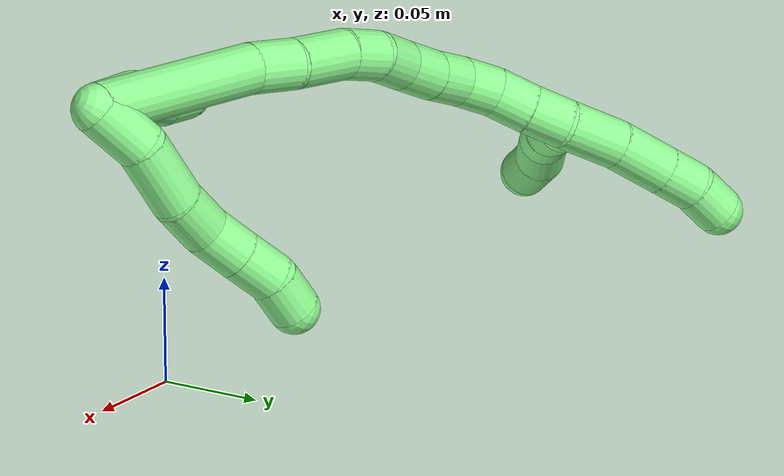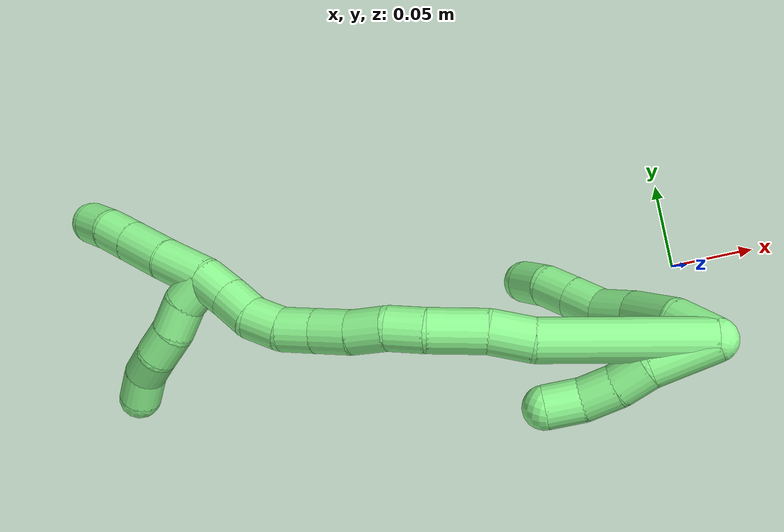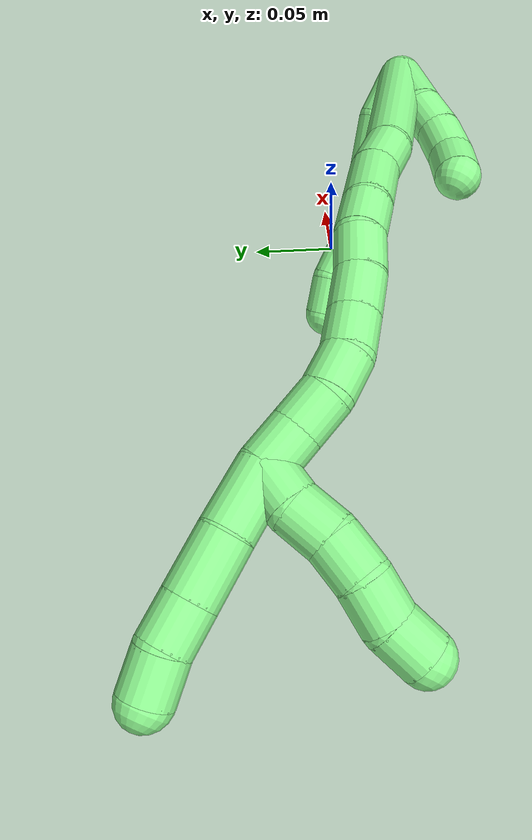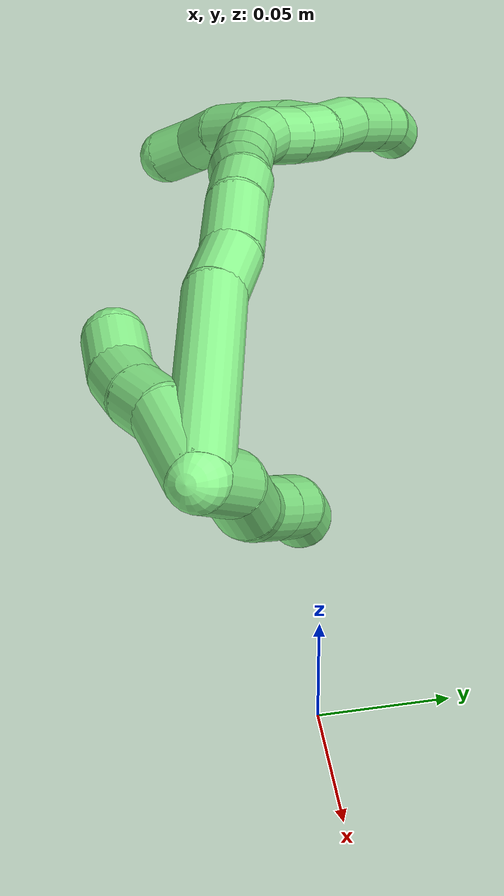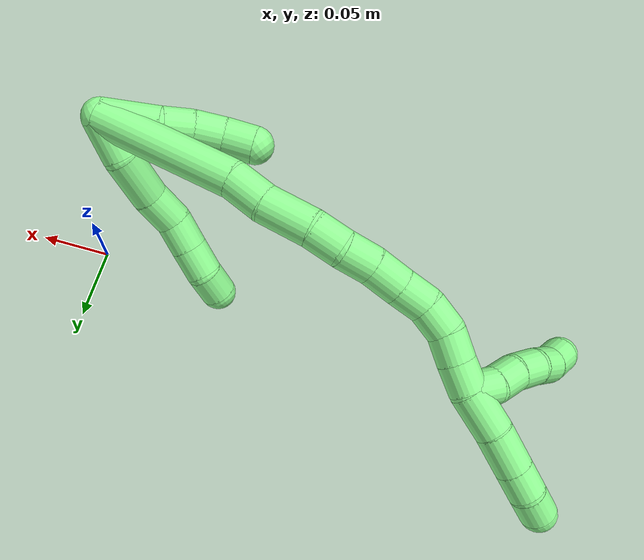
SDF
<sdf version="1.7">
 <world name="default">
  <model name="13">
   <static>0</static>
   <link name="13">
    <collision name="collision-cylinder-e_1_2_8">
     <pose>0.001333 0.003255 0.013668 -0.233775 0.094561 -0.011112</pose>
     <geometry><cylinder><radius>0.0125</radius><length>0.028226</length></cylinder></geometry>
     <surface>
      <friction><ode><mu>1.16</mu><mu2>1.16</mu2><slip1>0</slip1><slip2>0</slip2></ode></friction>
      <contact><ode><kp>1e+06</kp><kd>1</kd><max_vel>0</max_vel><min_depth>0.001</min_depth></ode></contact>
     </surface>
    </collision>
    <visual name="visual-cylinder-e_1_2_8">
     <pose>0.001333 0.003255 0.013668 -0.233775 0.094561 -0.011112</pose>
     <geometry><cylinder><radius>0.0125</radius><length>0.028226</length></cylinder></geometry>
     <material><ambient>0.564706 0.984314 0.572549 1</ambient></material>
    </visual>
    <collision name="collision-cylinder-e_2_8_9">
     <pose>0.000651 0.014031 0.042525 -0.459805 -0.118259 0.027708</pose>
     <geometry><cylinder><radius>0.0125</radius><length>0.034137</length></cylinder></geometry>
     <surface>
      <friction><ode><mu>1.16</mu><mu2>1.16</mu2><slip1>0</slip1><slip2>0</slip2></ode></friction>
      <contact><ode><kp>1e+06</kp><kd>1</kd><max_vel>0</max_vel><min_depth>0.001</min_depth></ode></contact>
     </surface>
    </collision>
    <visual name="visual-cylinder-e_2_8_9">
     <pose>0.000651 0.014031 0.042525 -0.459805 -0.118259 0.027708</pose>
     <geometry><cylinder><radius>0.0125</radius><length>0.034137</length></cylinder></geometry>
     <material><ambient>0.564706 0.984314 0.572549 1</ambient></material>
    </visual>
    <collision name="collision-cylinder-e_3_9_10">
     <pose>-0.004018 0.024795 0.069133 -0.276635 -0.220128 0.030765</pose>
     <geometry><cylinder><radius>0.0125</radius><length>0.024327</length></cylinder></geometry>
     <surface>
      <friction><ode><mu>1.16</mu><mu2>1.16</mu2><slip1>0</slip1><slip2>0</slip2></ode></friction>
      <contact><ode><kp>1e+06</kp><kd>1</kd><max_vel>0</max_vel><min_depth>0.001</min_depth></ode></contact>
     </surface>
    </collision>
    <visual name="visual-cylinder-e_3_9_10">
     <pose>-0.004018 0.024795 0.069133 -0.276635 -0.220128 0.030765</pose>
     <geometry><cylinder><radius>0.0125</radius><length>0.024327</length></cylinder></geometry>
     <material><ambient>0.564706 0.984314 0.572549 1</ambient></material>
    </visual>
    <collision name="collision-cylinder-e_4_10_11">
     <pose>-0.005964 0.029835 0.091082 -0.169147 0.066433 -0.005634</pose>
     <geometry><cylinder><radius>0.0125</radius><length>0.021415</length></cylinder></geometry>
     <surface>
      <friction><ode><mu>1.16</mu><mu2>1.16</mu2><slip1>0</slip1><slip2>0</slip2></ode></friction>
      <contact><ode><kp>1e+06</kp><kd>1</kd><max_vel>0</max_vel><min_depth>0.001</min_depth></ode></contact>
     </surface>
    </collision>
    <visual name="visual-cylinder-e_4_10_11">
     <pose>-0.005964 0.029835 0.091082 -0.169147 0.066433 -0.005634</pose>
     <geometry><cylinder><radius>0.0125</radius><length>0.021415</length></cylinder></geometry>
     <material><ambient>0.564706 0.984314 0.572549 1</ambient></material>
    </visual>
    <collision name="collision-cylinder-e_5_11_12">
     <pose>-0.00464 0.033264 0.112134 -0.153725 0.057452 -0.004426</pose>
     <geometry><cylinder><radius>0.0125</radius><length>0.021328</length></cylinder></geometry>
     <surface>
      <friction><ode><mu>1.16</mu><mu2>1.16</mu2><slip1>0</slip1><slip2>0</slip2></ode></friction>
      <contact><ode><kp>1e+06</kp><kd>1</kd><max_vel>0</max_vel><min_depth>0.001</min_depth></ode></contact>
     </surface>
    </collision>
    <visual name="visual-cylinder-e_5_11_12">
     <pose>-0.00464 0.033264 0.112134 -0.153725 0.057452 -0.004426</pose>
     <geometry><cylinder><radius>0.0125</radius><length>0.021328</length></cylinder></geometry>
     <material><ambient>0.564706 0.984314 0.572549 1</ambient></material>
    </visual>
    <collision name="collision-cylinder-e_6_12_6">
     <pose>-0.005211 0.039051 0.131986 -0.419095 -0.11528 0.024542</pose>
     <geometry><cylinder><radius>0.0125</radius><length>0.020567</length></cylinder></geometry>
     <surface>
      <friction><ode><mu>1.16</mu><mu2>1.16</mu2><slip1>0</slip1><slip2>0</slip2></ode></friction>
      <contact><ode><kp>1e+06</kp><kd>1</kd><max_vel>0</max_vel><min_depth>0.001</min_depth></ode></contact>
     </surface>
    </collision>
    <visual name="visual-cylinder-e_6_12_6">
     <pose>-0.005211 0.039051 0.131986 -0.419095 -0.11528 0.024542</pose>
     <geometry><cylinder><radius>0.0125</radius><length>0.020567</length></cylinder></geometry>
     <material><ambient>0.564706 0.984314 0.572549 1</ambient></material>
    </visual>
    <collision name="collision-cylinder-e_1_2_13">
     <pose>-0.01225 -0.006717 0.012942 0.478711 -0.69872 -0.177339</pose>
     <geometry><cylinder><radius>0.0125</radius><length>0.038088</length></cylinder></geometry>
     <surface>
      <friction><ode><mu>1.16</mu><mu2>1.16</mu2><slip1>0</slip1><slip2>0</slip2></ode></friction>
      <contact><ode><kp>1e+06</kp><kd>1</kd><max_vel>0</max_vel><min_depth>0.001</min_depth></ode></contact>
     </surface>
    </collision>
    <visual name="visual-cylinder-e_1_2_13">
     <pose>-0.01225 -0.006717 0.012942 0.478711 -0.69872 -0.177339</pose>
     <geometry><cylinder><radius>0.0125</radius><length>0.038088</length></cylinder></geometry>
     <material><ambient>0.564706 0.984314 0.572549 1</ambient></material>
    </visual>
    <collision name="collision-cylinder-e_2_13_14">
     <pose>-0.032229 -0.0144 0.032251 0.15068 -0.876121 -0.070685</pose>
     <geometry><cylinder><radius>0.0125</radius><length>0.020121</length></cylinder></geometry>
     <surface>
      <friction><ode><mu>1.16</mu><mu2>1.16</mu2><slip1>0</slip1><slip2>0</slip2></ode></friction>
      <contact><ode><kp>1e+06</kp><kd>1</kd><max_vel>0</max_vel><min_depth>0.001</min_depth></ode></contact>
     </surface>
    </collision>
    <visual name="visual-cylinder-e_2_13_14">
     <pose>-0.032229 -0.0144 0.032251 0.15068 -0.876121 -0.070685</pose>
     <geometry><cylinder><radius>0.0125</radius><length>0.020121</length></cylinder></geometry>
     <material><ambient>0.564706 0.984314 0.572549 1</ambient></material>
    </visual>
    <collision name="collision-cylinder-e_3_14_15">
     <pose>-0.046718 -0.017061 0.046239 0.218821 -0.713706 -0.081861</pose>
     <geometry><cylinder><radius>0.0125</radius><length>0.020655</length></cylinder></geometry>
     <surface>
      <friction><ode><mu>1.16</mu><mu2>1.16</mu2><slip1>0</slip1><slip2>0</slip2></ode></friction>
      <contact><ode><kp>1e+06</kp><kd>1</kd><max_vel>0</max_vel><min_depth>0.001</min_depth></ode></contact>
     </surface>
    </collision>
    <visual name="visual-cylinder-e_3_14_15">
     <pose>-0.046718 -0.017061 0.046239 0.218821 -0.713706 -0.081861</pose>
     <geometry><cylinder><radius>0.0125</radius><length>0.020655</length></cylinder></geometry>
     <material><ambient>0.564706 0.984314 0.572549 1</ambient></material>
    </visual>
    <collision name="collision-cylinder-e_4_15_5">
     <pose>-0.058667 -0.023267 0.061886 0.512035 -0.513169 -0.13714</pose>
     <geometry><cylinder><radius>0.0125</radius><length>0.021136</length></cylinder></geometry>
     <surface>
      <friction><ode><mu>1.16</mu><mu2>1.16</mu2><slip1>0</slip1><slip2>0</slip2></ode></friction>
      <contact><ode><kp>1e+06</kp><kd>1</kd><max_vel>0</max_vel><min_depth>0.001</min_depth></ode></contact>
     </surface>
    </collision>
    <visual name="visual-cylinder-e_4_15_5">
     <pose>-0.058667 -0.023267 0.061886 0.512035 -0.513169 -0.13714</pose>
     <geometry><cylinder><radius>0.0125</radius><length>0.021136</length></cylinder></geometry>
     <material><ambient>0.564706 0.984314 0.572549 1</ambient></material>
    </visual>
    <collision name="collision-cylinder-e_1_2_16">
     <pose>-0.014631 -0.024926 0.038599 0.573397 -0.308284 -0.091551</pose>
     <geometry><cylinder><radius>0.0125</radius><length>0.096442</length></cylinder></geometry>
     <surface>
      <friction><ode><mu>1.16</mu><mu2>1.16</mu2><slip1>0</slip1><slip2>0</slip2></ode></friction>
      <contact><ode><kp>1e+06</kp><kd>1</kd><max_vel>0</max_vel><min_depth>0.001</min_depth></ode></contact>
     </surface>
    </collision>
    <visual name="visual-cylinder-e_1_2_16">
     <pose>-0.014631 -0.024926 0.038599 0.573397 -0.308284 -0.091551</pose>
     <geometry><cylinder><radius>0.0125</radius><length>0.096442</length></cylinder></geometry>
     <material><ambient>0.564706 0.984314 0.572549 1</ambient></material>
    </visual>
    <collision name="collision-cylinder-e_2_16_17">
     <pose>-0.030751 -0.055646 0.088076 0.489422 -0.120153 -0.030038</pose>
     <geometry><cylinder><radius>0.0125</radius><length>0.024828</length></cylinder></geometry>
     <surface>
      <friction><ode><mu>1.16</mu><mu2>1.16</mu2><slip1>0</slip1><slip2>0</slip2></ode></friction>
      <contact><ode><kp>1e+06</kp><kd>1</kd><max_vel>0</max_vel><min_depth>0.001</min_depth></ode></contact>
     </surface>
    </collision>
    <visual name="visual-cylinder-e_2_16_17">
     <pose>-0.030751 -0.055646 0.088076 0.489422 -0.120153 -0.030038</pose>
     <geometry><cylinder><radius>0.0125</radius><length>0.024828</length></cylinder></geometry>
     <material><ambient>0.564706 0.984314 0.572549 1</ambient></material>
    </visual>
    <collision name="collision-cylinder-e_3_17_18">
     <pose>-0.037022 -0.069299 0.112614 0.522069 -0.294669 -0.079248</pose>
     <geometry><cylinder><radius>0.0125</radius><length>0.032939</length></cylinder></geometry>
     <surface>
      <friction><ode><mu>1.16</mu><mu2>1.16</mu2><slip1>0</slip1><slip2>0</slip2></ode></friction>
      <contact><ode><kp>1e+06</kp><kd>1</kd><max_vel>0</max_vel><min_depth>0.001</min_depth></ode></contact>
     </surface>
    </collision>
    <visual name="visual-cylinder-e_3_17_18">
     <pose>-0.037022 -0.069299 0.112614 0.522069 -0.294669 -0.079248</pose>
     <geometry><cylinder><radius>0.0125</radius><length>0.032939</length></cylinder></geometry>
     <material><ambient>0.564706 0.984314 0.572549 1</ambient></material>
    </visual>
    <collision name="collision-cylinder-e_4_18_19">
     <pose>-0.044595 -0.080606 0.136054 0.338941 -0.262837 -0.045227</pose>
     <geometry><cylinder><radius>0.0125</radius><length>0.021477</length></cylinder></geometry>
     <surface>
      <friction><ode><mu>1.16</mu><mu2>1.16</mu2><slip1>0</slip1><slip2>0</slip2></ode></friction>
      <contact><ode><kp>1e+06</kp><kd>1</kd><max_vel>0</max_vel><min_depth>0.001</min_depth></ode></contact>
     </surface>
    </collision>
    <visual name="visual-cylinder-e_4_18_19">
     <pose>-0.044595 -0.080606 0.136054 0.338941 -0.262837 -0.045227</pose>
     <geometry><cylinder><radius>0.0125</radius><length>0.021477</length></cylinder></geometry>
     <material><ambient>0.564706 0.984314 0.572549 1</ambient></material>
    </visual>
    <collision name="collision-cylinder-e_5_19_20">
     <pose>-0.051777 -0.085223 0.155485 0.120577 -0.424339 -0.026004</pose>
     <geometry><cylinder><radius>0.0125</radius><length>0.021335</length></cylinder></geometry>
     <surface>
      <friction><ode><mu>1.16</mu><mu2>1.16</mu2><slip1>0</slip1><slip2>0</slip2></ode></friction>
      <contact><ode><kp>1e+06</kp><kd>1</kd><max_vel>0</max_vel><min_depth>0.001</min_depth></ode></contact>
     </surface>
    </collision>
    <visual name="visual-cylinder-e_5_19_20">
     <pose>-0.051777 -0.085223 0.155485 0.120577 -0.424339 -0.026004</pose>
     <geometry><cylinder><radius>0.0125</radius><length>0.021335</length></cylinder></geometry>
     <material><ambient>0.564706 0.984314 0.572549 1</ambient></material>
    </visual>
    <collision name="collision-cylinder-e_6_20_21">
     <pose>-0.059238 -0.087753 0.17554 0.129994 -0.284499 -0.018643</pose>
     <geometry><cylinder><radius>0.0125</radius><length>0.021866</length></cylinder></geometry>
     <surface>
      <friction><ode><mu>1.16</mu><mu2>1.16</mu2><slip1>0</slip1><slip2>0</slip2></ode></friction>
      <contact><ode><kp>1e+06</kp><kd>1</kd><max_vel>0</max_vel><min_depth>0.001</min_depth></ode></contact>
     </surface>
    </collision>
    <visual name="visual-cylinder-e_6_20_21">
     <pose>-0.059238 -0.087753 0.17554 0.129994 -0.284499 -0.018643</pose>
     <geometry><cylinder><radius>0.0125</radius><length>0.021866</length></cylinder></geometry>
     <material><ambient>0.564706 0.984314 0.572549 1</ambient></material>
    </visual>
    <collision name="collision-cylinder-e_7_21_22">
     <pose>-0.065142 -0.091166 0.195534 0.210974 -0.281451 -0.029996</pose>
     <geometry><cylinder><radius>0.0125</radius><length>0.020414</length></cylinder></geometry>
     <surface>
      <friction><ode><mu>1.16</mu><mu2>1.16</mu2><slip1>0</slip1><slip2>0</slip2></ode></friction>
      <contact><ode><kp>1e+06</kp><kd>1</kd><max_vel>0</max_vel><min_depth>0.001</min_depth></ode></contact>
     </surface>
    </collision>
    <visual name="visual-cylinder-e_7_21_22">
     <pose>-0.065142 -0.091166 0.195534 0.210974 -0.281451 -0.029996</pose>
     <geometry><cylinder><radius>0.0125</radius><length>0.020414</length></cylinder></geometry>
     <material><ambient>0.564706 0.984314 0.572549 1</ambient></material>
    </visual>
    <collision name="collision-cylinder-e_8_22_23">
     <pose>-0.067893 -0.094771 0.215116 0.153943 0.008283 0.000639</pose>
     <geometry><cylinder><radius>0.0125</radius><length>0.020229</length></cylinder></geometry>
     <surface>
      <friction><ode><mu>1.16</mu><mu2>1.16</mu2><slip1>0</slip1><slip2>0</slip2></ode></friction>
      <contact><ode><kp>1e+06</kp><kd>1</kd><max_vel>0</max_vel><min_depth>0.001</min_depth></ode></contact>
     </surface>
    </collision>
    <visual name="visual-cylinder-e_8_22_23">
     <pose>-0.067893 -0.094771 0.215116 0.153943 0.008283 0.000639</pose>
     <geometry><cylinder><radius>0.0125</radius><length>0.020229</length></cylinder></geometry>
     <material><ambient>0.564706 0.984314 0.572549 1</ambient></material>
    </visual>
    <collision name="collision-cylinder-e_9_23_24">
     <pose>-0.065027 -0.096375 0.234731 0.005545 0.2815 0.000786</pose>
     <geometry><cylinder><radius>0.0125</radius><length>0.020028</length></cylinder></geometry>
     <surface>
      <friction><ode><mu>1.16</mu><mu2>1.16</mu2><slip1>0</slip1><slip2>0</slip2></ode></friction>
      <contact><ode><kp>1e+06</kp><kd>1</kd><max_vel>0</max_vel><min_depth>0.001</min_depth></ode></contact>
     </surface>
    </collision>
    <visual name="visual-cylinder-e_9_23_24">
     <pose>-0.065027 -0.096375 0.234731 0.005545 0.2815 0.000786</pose>
     <geometry><cylinder><radius>0.0125</radius><length>0.020028</length></cylinder></geometry>
     <material><ambient>0.564706 0.984314 0.572549 1</ambient></material>
    </visual>
    <collision name="collision-cylinder-e_10_24_1">
     <pose>-0.059588 -0.097 0.254203 0.057974 0.263054 0.007671</pose>
     <geometry><cylinder><radius>0.0125</radius><length>0.020441</length></cylinder></geometry>
     <surface>
      <friction><ode><mu>1.16</mu><mu2>1.16</mu2><slip1>0</slip1><slip2>0</slip2></ode></friction>
      <contact><ode><kp>1e+06</kp><kd>1</kd><max_vel>0</max_vel><min_depth>0.001</min_depth></ode></contact>
     </surface>
    </collision>
    <visual name="visual-cylinder-e_10_24_1">
     <pose>-0.059588 -0.097 0.254203 0.057974 0.263054 0.007671</pose>
     <geometry><cylinder><radius>0.0125</radius><length>0.020441</length></cylinder></geometry>
     <material><ambient>0.564706 0.984314 0.572549 1</ambient></material>
    </visual>
    <collision name="collision-cylinder-e_1_1_25">
     <pose>-0.055849 -0.098821 0.27922 0.082191 0.070968 0.002919</pose>
     <geometry><cylinder><radius>0.0125</radius><length>0.030511</length></cylinder></geometry>
     <surface>
      <friction><ode><mu>1.16</mu><mu2>1.16</mu2><slip1>0</slip1><slip2>0</slip2></ode></friction>
      <contact><ode><kp>1e+06</kp><kd>1</kd><max_vel>0</max_vel><min_depth>0.001</min_depth></ode></contact>
     </surface>
    </collision>
    <visual name="visual-cylinder-e_1_1_25">
     <pose>-0.055849 -0.098821 0.27922 0.082191 0.070968 0.002919</pose>
     <geometry><cylinder><radius>0.0125</radius><length>0.030511</length></cylinder></geometry>
     <material><ambient>0.564706 0.984314 0.572549 1</ambient></material>
    </visual>
    <collision name="collision-cylinder-e_2_25_26">
     <pose>-0.05354 -0.099654 0.308828 -0.028847 0.084683 -0.001222</pose>
     <geometry><cylinder><radius>0.0125</radius><length>0.028999</length></cylinder></geometry>
     <surface>
      <friction><ode><mu>1.16</mu><mu2>1.16</mu2><slip1>0</slip1><slip2>0</slip2></ode></friction>
      <contact><ode><kp>1e+06</kp><kd>1</kd><max_vel>0</max_vel><min_depth>0.001</min_depth></ode></contact>
     </surface>
    </collision>
    <visual name="visual-cylinder-e_2_25_26">
     <pose>-0.05354 -0.099654 0.308828 -0.028847 0.084683 -0.001222</pose>
     <geometry><cylinder><radius>0.0125</radius><length>0.028999</length></cylinder></geometry>
     <material><ambient>0.564706 0.984314 0.572549 1</ambient></material>
    </visual>
    <collision name="collision-cylinder-e_3_26_27">
     <pose>-0.051461 -0.098946 0.333431 -0.028653 0.083702 -0.0012</pose>
     <geometry><cylinder><radius>0.0125</radius><length>0.020404</length></cylinder></geometry>
     <surface>
      <friction><ode><mu>1.16</mu><mu2>1.16</mu2><slip1>0</slip1><slip2>0</slip2></ode></friction>
      <contact><ode><kp>1e+06</kp><kd>1</kd><max_vel>0</max_vel><min_depth>0.001</min_depth></ode></contact>
     </surface>
    </collision>
    <visual name="visual-cylinder-e_3_26_27">
     <pose>-0.051461 -0.098946 0.333431 -0.028653 0.083702 -0.0012</pose>
     <geometry><cylinder><radius>0.0125</radius><length>0.020404</length></cylinder></geometry>
     <material><ambient>0.564706 0.984314 0.572549 1</ambient></material>
    </visual>
    <collision name="collision-cylinder-e_4_27_4">
     <pose>-0.050958 -0.096286 0.353347 -0.238222 -0.034805 0.004166</pose>
     <geometry><cylinder><radius>0.0125</radius><length>0.020086</length></cylinder></geometry>
     <surface>
      <friction><ode><mu>1.16</mu><mu2>1.16</mu2><slip1>0</slip1><slip2>0</slip2></ode></friction>
      <contact><ode><kp>1e+06</kp><kd>1</kd><max_vel>0</max_vel><min_depth>0.001</min_depth></ode></contact>
     </surface>
    </collision>
    <visual name="visual-cylinder-e_4_27_4">
     <pose>-0.050958 -0.096286 0.353347 -0.238222 -0.034805 0.004166</pose>
     <geometry><cylinder><radius>0.0125</radius><length>0.020086</length></cylinder></geometry>
     <material><ambient>0.564706 0.984314 0.572549 1</ambient></material>
    </visual>
    <collision name="collision-cylinder-e_1_1_28">
     <pose>-0.065606 -0.097211 0.269016 -0.072602 -1.05022 0.042075</pose>
     <geometry><cylinder><radius>0.0125</radius><length>0.02</length></cylinder></geometry>
     <surface>
      <friction><ode><mu>1.16</mu><mu2>1.16</mu2><slip1>0</slip1><slip2>0</slip2></ode></friction>
      <contact><ode><kp>1e+06</kp><kd>1</kd><max_vel>0</max_vel><min_depth>0.001</min_depth></ode></contact>
     </surface>
    </collision>
    <visual name="visual-cylinder-e_1_1_28">
     <pose>-0.065606 -0.097211 0.269016 -0.072602 -1.05022 0.042075</pose>
     <geometry><cylinder><radius>0.0125</radius><length>0.02</length></cylinder></geometry>
     <material><ambient>0.564706 0.984314 0.572549 1</ambient></material>
    </visual>
    <collision name="collision-cylinder-e_2_28_29">
     <pose>-0.083746 -0.095093 0.276683 -0.575781 -1.24215 0.417588</pose>
     <geometry><cylinder><radius>0.0125</radius><length>0.02</length></cylinder></geometry>
     <surface>
      <friction><ode><mu>1.16</mu><mu2>1.16</mu2><slip1>0</slip1><slip2>0</slip2></ode></friction>
      <contact><ode><kp>1e+06</kp><kd>1</kd><max_vel>0</max_vel><min_depth>0.001</min_depth></ode></contact>
     </surface>
    </collision>
    <visual name="visual-cylinder-e_2_28_29">
     <pose>-0.083746 -0.095093 0.276683 -0.575781 -1.24215 0.417588</pose>
     <geometry><cylinder><radius>0.0125</radius><length>0.02</length></cylinder></geometry>
     <material><ambient>0.564706 0.984314 0.572549 1</ambient></material>
    </visual>
    <collision name="collision-cylinder-e_3_29_30">
     <pose>-0.101831 -0.091429 0.284086 -0.385708 -1.03934 0.222527</pose>
     <geometry><cylinder><radius>0.0125</radius><length>0.02</length></cylinder></geometry>
     <surface>
      <friction><ode><mu>1.16</mu><mu2>1.16</mu2><slip1>0</slip1><slip2>0</slip2></ode></friction>
      <contact><ode><kp>1e+06</kp><kd>1</kd><max_vel>0</max_vel><min_depth>0.001</min_depth></ode></contact>
     </surface>
    </collision>
    <visual name="visual-cylinder-e_3_29_30">
     <pose>-0.101831 -0.091429 0.284086 -0.385708 -1.03934 0.222527</pose>
     <geometry><cylinder><radius>0.0125</radius><length>0.02</length></cylinder></geometry>
     <material><ambient>0.564706 0.984314 0.572549 1</ambient></material>
    </visual>
    <collision name="collision-cylinder-e_4_30_31">
     <pose>-0.117838 -0.085573 0.294245 -0.625856 -0.830997 0.283582</pose>
     <geometry><cylinder><radius>0.0125</radius><length>0.02</length></cylinder></geometry>
     <surface>
      <friction><ode><mu>1.16</mu><mu2>1.16</mu2><slip1>0</slip1><slip2>0</slip2></ode></friction>
      <contact><ode><kp>1e+06</kp><kd>1</kd><max_vel>0</max_vel><min_depth>0.001</min_depth></ode></contact>
     </surface>
    </collision>
    <visual name="visual-cylinder-e_4_30_31">
     <pose>-0.117838 -0.085573 0.294245 -0.625856 -0.830997 0.283582</pose>
     <geometry><cylinder><radius>0.0125</radius><length>0.02</length></cylinder></geometry>
     <material><ambient>0.564706 0.984314 0.572549 1</ambient></material>
    </visual>
    <collision name="collision-cylinder-e_5_31_3">
     <pose>-0.133839 -0.077423 0.302561 -0.974344 -1.03822 0.587858</pose>
     <geometry><cylinder><radius>0.0125</radius><length>0.02</length></cylinder></geometry>
     <surface>
      <friction><ode><mu>1.16</mu><mu2>1.16</mu2><slip1>0</slip1><slip2>0</slip2></ode></friction>
      <contact><ode><kp>1e+06</kp><kd>1</kd><max_vel>0</max_vel><min_depth>0.001</min_depth></ode></contact>
     </surface>
    </collision>
    <visual name="visual-cylinder-e_5_31_3">
     <pose>-0.133839 -0.077423 0.302561 -0.974344 -1.03822 0.587858</pose>
     <geometry><cylinder><radius>0.0125</radius><length>0.02</length></cylinder></geometry>
     <material><ambient>0.564706 0.984314 0.572549 1</ambient></material>
    </visual>
    <collision name="collision-sphere-3">
     <pose>-0.142454 -0.073223 0.305413 0 -0 0</pose>
     <geometry><sphere><radius>0.0125</radius></sphere></geometry>
     <surface>
      <friction><ode><mu>1.16</mu><mu2>1.16</mu2><slip1>0</slip1><slip2>0</slip2></ode></friction>
      <contact><ode><kp>1e+06</kp><kd>1</kd><max_vel>0</max_vel><min_depth>0.001</min_depth></ode></contact>
     </surface>
    </collision>
    <visual name="visual-sphere-3">
     <pose>-0.142454 -0.073223 0.305413 0 -0 0</pose>
     <geometry><sphere><radius>0.0125</radius></sphere></geometry>
     <material><ambient>0.564706 0.984314 0.572549 1</ambient></material>
    </visual>
    <collision name="collision-sphere-31">
     <pose>-0.125224 -0.081624 0.299709 0 -0 0</pose>
     <geometry><sphere><radius>0.0125</radius></sphere></geometry>
     <surface>
      <friction><ode><mu>1.16</mu><mu2>1.16</mu2><slip1>0</slip1><slip2>0</slip2></ode></friction>
      <contact><ode><kp>1e+06</kp><kd>1</kd><max_vel>0</max_vel><min_depth>0.001</min_depth></ode></contact>
     </surface>
    </collision>
    <visual name="visual-sphere-31">
     <pose>-0.125224 -0.081624 0.299709 0 -0 0</pose>
     <geometry><sphere><radius>0.0125</radius></sphere></geometry>
     <material><ambient>0.564706 0.984314 0.572549 1</ambient></material>
    </visual>
    <collision name="collision-sphere-30">
     <pose>-0.110452 -0.089522 0.288782 0 -0 0</pose>
     <geometry><sphere><radius>0.0125</radius></sphere></geometry>
     <surface>
      <friction><ode><mu>1.16</mu><mu2>1.16</mu2><slip1>0</slip1><slip2>0</slip2></ode></friction>
      <contact><ode><kp>1e+06</kp><kd>1</kd><max_vel>0</max_vel><min_depth>0.001</min_depth></ode></contact>
     </surface>
    </collision>
    <visual name="visual-sphere-30">
     <pose>-0.110452 -0.089522 0.288782 0 -0 0</pose>
     <geometry><sphere><radius>0.0125</radius></sphere></geometry>
     <material><ambient>0.564706 0.984314 0.572549 1</ambient></material>
    </visual>
    <collision name="collision-sphere-29">
     <pose>-0.093211 -0.093336 0.279391 0 -0 0</pose>
     <geometry><sphere><radius>0.0125</radius></sphere></geometry>
     <surface>
      <friction><ode><mu>1.16</mu><mu2>1.16</mu2><slip1>0</slip1><slip2>0</slip2></ode></friction>
      <contact><ode><kp>1e+06</kp><kd>1</kd><max_vel>0</max_vel><min_depth>0.001</min_depth></ode></contact>
     </surface>
    </collision>
    <visual name="visual-sphere-29">
     <pose>-0.093211 -0.093336 0.279391 0 -0 0</pose>
     <geometry><sphere><radius>0.0125</radius></sphere></geometry>
     <material><ambient>0.564706 0.984314 0.572549 1</ambient></material>
    </visual>
    <collision name="collision-sphere-28">
     <pose>-0.074281 -0.09685 0.273976 0 -0 0</pose>
     <geometry><sphere><radius>0.0125</radius></sphere></geometry>
     <surface>
      <friction><ode><mu>1.16</mu><mu2>1.16</mu2><slip1>0</slip1><slip2>0</slip2></ode></friction>
      <contact><ode><kp>1e+06</kp><kd>1</kd><max_vel>0</max_vel><min_depth>0.001</min_depth></ode></contact>
     </surface>
    </collision>
    <visual name="visual-sphere-28">
     <pose>-0.074281 -0.09685 0.273976 0 -0 0</pose>
     <geometry><sphere><radius>0.0125</radius></sphere></geometry>
     <material><ambient>0.564706 0.984314 0.572549 1</ambient></material>
    </visual>
    <collision name="collision-sphere-4">
     <pose>-0.051307 -0.093918 0.3631 0 -0 0</pose>
     <geometry><sphere><radius>0.0125</radius></sphere></geometry>
     <surface>
      <friction><ode><mu>1.16</mu><mu2>1.16</mu2><slip1>0</slip1><slip2>0</slip2></ode></friction>
      <contact><ode><kp>1e+06</kp><kd>1</kd><max_vel>0</max_vel><min_depth>0.001</min_depth></ode></contact>
     </surface>
    </collision>
    <visual name="visual-sphere-4">
     <pose>-0.051307 -0.093918 0.3631 0 -0 0</pose>
     <geometry><sphere><radius>0.0125</radius></sphere></geometry>
     <material><ambient>0.564706 0.984314 0.572549 1</ambient></material>
    </visual>
    <collision name="collision-sphere-27">
     <pose>-0.050608 -0.098655 0.343594 0 -0 0</pose>
     <geometry><sphere><radius>0.0125</radius></sphere></geometry>
     <surface>
      <friction><ode><mu>1.16</mu><mu2>1.16</mu2><slip1>0</slip1><slip2>0</slip2></ode></friction>
      <contact><ode><kp>1e+06</kp><kd>1</kd><max_vel>0</max_vel><min_depth>0.001</min_depth></ode></contact>
     </surface>
    </collision>
    <visual name="visual-sphere-27">
     <pose>-0.050608 -0.098655 0.343594 0 -0 0</pose>
     <geometry><sphere><radius>0.0125</radius></sphere></geometry>
     <material><ambient>0.564706 0.984314 0.572549 1</ambient></material>
    </visual>
    <collision name="collision-sphere-26">
     <pose>-0.052314 -0.099237 0.323269 0 -0 0</pose>
     <geometry><sphere><radius>0.0125</radius></sphere></geometry>
     <surface>
      <friction><ode><mu>1.16</mu><mu2>1.16</mu2><slip1>0</slip1><slip2>0</slip2></ode></friction>
      <contact><ode><kp>1e+06</kp><kd>1</kd><max_vel>0</max_vel><min_depth>0.001</min_depth></ode></contact>
     </surface>
    </collision>
    <visual name="visual-sphere-26">
     <pose>-0.052314 -0.099237 0.323269 0 -0 0</pose>
     <geometry><sphere><radius>0.0125</radius></sphere></geometry>
     <material><ambient>0.564706 0.984314 0.572549 1</ambient></material>
    </visual>
    <collision name="collision-sphere-25">
     <pose>-0.054767 -0.10007 0.294386 0 -0 0</pose>
     <geometry><sphere><radius>0.0125</radius></sphere></geometry>
     <surface>
      <friction><ode><mu>1.16</mu><mu2>1.16</mu2><slip1>0</slip1><slip2>0</slip2></ode></friction>
      <contact><ode><kp>1e+06</kp><kd>1</kd><max_vel>0</max_vel><min_depth>0.001</min_depth></ode></contact>
     </surface>
    </collision>
    <visual name="visual-sphere-25">
     <pose>-0.054767 -0.10007 0.294386 0 -0 0</pose>
     <geometry><sphere><radius>0.0125</radius></sphere></geometry>
     <material><ambient>0.564706 0.984314 0.572549 1</ambient></material>
    </visual>
    <collision name="collision-sphere-1">
     <pose>-0.05693 -0.097572 0.264055 0 -0 0</pose>
     <geometry><sphere><radius>0.0125</radius></sphere></geometry>
     <surface>
      <friction><ode><mu>1.16</mu><mu2>1.16</mu2><slip1>0</slip1><slip2>0</slip2></ode></friction>
      <contact><ode><kp>1e+06</kp><kd>1</kd><max_vel>0</max_vel><min_depth>0.001</min_depth></ode></contact>
     </surface>
    </collision>
    <visual name="visual-sphere-1">
     <pose>-0.05693 -0.097572 0.264055 0 -0 0</pose>
     <geometry><sphere><radius>0.0125</radius></sphere></geometry>
     <material><ambient>0.564706 0.984314 0.572549 1</ambient></material>
    </visual>
    <collision name="collision-sphere-24">
     <pose>-0.062246 -0.096428 0.24435 0 -0 0</pose>
     <geometry><sphere><radius>0.0125</radius></sphere></geometry>
     <surface>
      <friction><ode><mu>1.16</mu><mu2>1.16</mu2><slip1>0</slip1><slip2>0</slip2></ode></friction>
      <contact><ode><kp>1e+06</kp><kd>1</kd><max_vel>0</max_vel><min_depth>0.001</min_depth></ode></contact>
     </surface>
    </collision>
    <visual name="visual-sphere-24">
     <pose>-0.062246 -0.096428 0.24435 0 -0 0</pose>
     <geometry><sphere><radius>0.0125</radius></sphere></geometry>
     <material><ambient>0.564706 0.984314 0.572549 1</ambient></material>
    </visual>
    <collision name="collision-sphere-23">
     <pose>-0.067809 -0.096322 0.225111 0 -0 0</pose>
     <geometry><sphere><radius>0.0125</radius></sphere></geometry>
     <surface>
      <friction><ode><mu>1.16</mu><mu2>1.16</mu2><slip1>0</slip1><slip2>0</slip2></ode></friction>
      <contact><ode><kp>1e+06</kp><kd>1</kd><max_vel>0</max_vel><min_depth>0.001</min_depth></ode></contact>
     </surface>
    </collision>
    <visual name="visual-sphere-23">
     <pose>-0.067809 -0.096322 0.225111 0 -0 0</pose>
     <geometry><sphere><radius>0.0125</radius></sphere></geometry>
     <material><ambient>0.564706 0.984314 0.572549 1</ambient></material>
    </visual>
    <collision name="collision-sphere-22">
     <pose>-0.067977 -0.09322 0.205122 0 -0 0</pose>
     <geometry><sphere><radius>0.0125</radius></sphere></geometry>
     <surface>
      <friction><ode><mu>1.16</mu><mu2>1.16</mu2><slip1>0</slip1><slip2>0</slip2></ode></friction>
      <contact><ode><kp>1e+06</kp><kd>1</kd><max_vel>0</max_vel><min_depth>0.001</min_depth></ode></contact>
     </surface>
    </collision>
    <visual name="visual-sphere-22">
     <pose>-0.067977 -0.09322 0.205122 0 -0 0</pose>
     <geometry><sphere><radius>0.0125</radius></sphere></geometry>
     <material><ambient>0.564706 0.984314 0.572549 1</ambient></material>
    </visual>
    <collision name="collision-sphere-21">
     <pose>-0.062307 -0.089113 0.185945 0 -0 0</pose>
     <geometry><sphere><radius>0.0125</radius></sphere></geometry>
     <surface>
      <friction><ode><mu>1.16</mu><mu2>1.16</mu2><slip1>0</slip1><slip2>0</slip2></ode></friction>
      <contact><ode><kp>1e+06</kp><kd>1</kd><max_vel>0</max_vel><min_depth>0.001</min_depth></ode></contact>
     </surface>
    </collision>
    <visual name="visual-sphere-21">
     <pose>-0.062307 -0.089113 0.185945 0 -0 0</pose>
     <geometry><sphere><radius>0.0125</radius></sphere></geometry>
     <material><ambient>0.564706 0.984314 0.572549 1</ambient></material>
    </visual>
    <collision name="collision-sphere-12">
     <pose>-0.004028 0.034894 0.122655 0 -0 0</pose>
     <geometry><sphere><radius>0.0125</radius></sphere></geometry>
     <surface>
      <friction><ode><mu>1.16</mu><mu2>1.16</mu2><slip1>0</slip1><slip2>0</slip2></ode></friction>
      <contact><ode><kp>1e+06</kp><kd>1</kd><max_vel>0</max_vel><min_depth>0.001</min_depth></ode></contact>
     </surface>
    </collision>
    <visual name="visual-sphere-12">
     <pose>-0.004028 0.034894 0.122655 0 -0 0</pose>
     <geometry><sphere><radius>0.0125</radius></sphere></geometry>
     <material><ambient>0.564706 0.984314 0.572549 1</ambient></material>
    </visual>
    <collision name="collision-sphere-11">
     <pose>-0.005253 0.031634 0.101614 0 -0 0</pose>
     <geometry><sphere><radius>0.0125</radius></sphere></geometry>
     <surface>
      <friction><ode><mu>1.16</mu><mu2>1.16</mu2><slip1>0</slip1><slip2>0</slip2></ode></friction>
      <contact><ode><kp>1e+06</kp><kd>1</kd><max_vel>0</max_vel><min_depth>0.001</min_depth></ode></contact>
     </surface>
    </collision>
    <visual name="visual-sphere-11">
     <pose>-0.005253 0.031634 0.101614 0 -0 0</pose>
     <geometry><sphere><radius>0.0125</radius></sphere></geometry>
     <material><ambient>0.564706 0.984314 0.572549 1</ambient></material>
    </visual>
    <collision name="collision-sphere-10">
     <pose>-0.006674 0.028037 0.080551 0 -0 0</pose>
     <geometry><sphere><radius>0.0125</radius></sphere></geometry>
     <surface>
      <friction><ode><mu>1.16</mu><mu2>1.16</mu2><slip1>0</slip1><slip2>0</slip2></ode></friction>
      <contact><ode><kp>1e+06</kp><kd>1</kd><max_vel>0</max_vel><min_depth>0.001</min_depth></ode></contact>
     </surface>
    </collision>
    <visual name="visual-sphere-10">
     <pose>-0.006674 0.028037 0.080551 0 -0 0</pose>
     <geometry><sphere><radius>0.0125</radius></sphere></geometry>
     <material><ambient>0.564706 0.984314 0.572549 1</ambient></material>
    </visual>
    <collision name="collision-sphere-9">
     <pose>-0.001362 0.021553 0.057714 0 -0 0</pose>
     <geometry><sphere><radius>0.0125</radius></sphere></geometry>
     <surface>
      <friction><ode><mu>1.16</mu><mu2>1.16</mu2><slip1>0</slip1><slip2>0</slip2></ode></friction>
      <contact><ode><kp>1e+06</kp><kd>1</kd><max_vel>0</max_vel><min_depth>0.001</min_depth></ode></contact>
     </surface>
    </collision>
    <visual name="visual-sphere-9">
     <pose>-0.001362 0.021553 0.057714 0 -0 0</pose>
     <geometry><sphere><radius>0.0125</radius></sphere></geometry>
     <material><ambient>0.564706 0.984314 0.572549 1</ambient></material>
    </visual>
    <collision name="collision-sphere-2">
     <geometry><sphere><radius>0.0125</radius></sphere></geometry>
     <surface>
      <friction><ode><mu>1.16</mu><mu2>1.16</mu2><slip1>0</slip1><slip2>0</slip2></ode></friction>
      <contact><ode><kp>1e+06</kp><kd>1</kd><max_vel>0</max_vel><min_depth>0.001</min_depth></ode></contact>
     </surface>
    </collision>
    <visual name="visual-sphere-2">
     <geometry><sphere><radius>0.0125</radius></sphere></geometry>
     <material><ambient>0.564706 0.984314 0.572549 1</ambient></material>
    </visual>
    <collision name="collision-sphere-19">
     <pose>-0.047385 -0.084054 0.145834 0 -0 0</pose>
     <geometry><sphere><radius>0.0125</radius></sphere></geometry>
     <surface>
      <friction><ode><mu>1.16</mu><mu2>1.16</mu2><slip1>0</slip1><slip2>0</slip2></ode></friction>
      <contact><ode><kp>1e+06</kp><kd>1</kd><max_vel>0</max_vel><min_depth>0.001</min_depth></ode></contact>
     </surface>
    </collision>
    <visual name="visual-sphere-19">
     <pose>-0.047385 -0.084054 0.145834 0 -0 0</pose>
     <geometry><sphere><radius>0.0125</radius></sphere></geometry>
     <material><ambient>0.564706 0.984314 0.572549 1</ambient></material>
    </visual>
    <collision name="collision-sphere-8">
     <pose>0.002665 0.00651 0.027336 0 -0 0</pose>
     <geometry><sphere><radius>0.0125</radius></sphere></geometry>
     <surface>
      <friction><ode><mu>1.16</mu><mu2>1.16</mu2><slip1>0</slip1><slip2>0</slip2></ode></friction>
      <contact><ode><kp>1e+06</kp><kd>1</kd><max_vel>0</max_vel><min_depth>0.001</min_depth></ode></contact>
     </surface>
    </collision>
    <visual name="visual-sphere-8">
     <pose>0.002665 0.00651 0.027336 0 -0 0</pose>
     <geometry><sphere><radius>0.0125</radius></sphere></geometry>
     <material><ambient>0.564706 0.984314 0.572549 1</ambient></material>
    </visual>
    <collision name="collision-sphere-6">
     <pose>-0.006394 0.043208 0.141318 0 -0 0</pose>
     <geometry><sphere><radius>0.0125</radius></sphere></geometry>
     <surface>
      <friction><ode><mu>1.16</mu><mu2>1.16</mu2><slip1>0</slip1><slip2>0</slip2></ode></friction>
      <contact><ode><kp>1e+06</kp><kd>1</kd><max_vel>0</max_vel><min_depth>0.001</min_depth></ode></contact>
     </surface>
    </collision>
    <visual name="visual-sphere-6">
     <pose>-0.006394 0.043208 0.141318 0 -0 0</pose>
     <geometry><sphere><radius>0.0125</radius></sphere></geometry>
     <material><ambient>0.564706 0.984314 0.572549 1</ambient></material>
    </visual>
    <collision name="collision-sphere-13">
     <pose>-0.0245 -0.013433 0.025884 0 -0 0</pose>
     <geometry><sphere><radius>0.0125</radius></sphere></geometry>
     <surface>
      <friction><ode><mu>1.16</mu><mu2>1.16</mu2><slip1>0</slip1><slip2>0</slip2></ode></friction>
      <contact><ode><kp>1e+06</kp><kd>1</kd><max_vel>0</max_vel><min_depth>0.001</min_depth></ode></contact>
     </surface>
    </collision>
    <visual name="visual-sphere-13">
     <pose>-0.0245 -0.013433 0.025884 0 -0 0</pose>
     <geometry><sphere><radius>0.0125</radius></sphere></geometry>
     <material><ambient>0.564706 0.984314 0.572549 1</ambient></material>
    </visual>
    <collision name="collision-sphere-14">
     <pose>-0.039958 -0.015367 0.038619 0 -0 0</pose>
     <geometry><sphere><radius>0.0125</radius></sphere></geometry>
     <surface>
      <friction><ode><mu>1.16</mu><mu2>1.16</mu2><slip1>0</slip1><slip2>0</slip2></ode></friction>
      <contact><ode><kp>1e+06</kp><kd>1</kd><max_vel>0</max_vel><min_depth>0.001</min_depth></ode></contact>
     </surface>
    </collision>
    <visual name="visual-sphere-14">
     <pose>-0.039958 -0.015367 0.038619 0 -0 0</pose>
     <geometry><sphere><radius>0.0125</radius></sphere></geometry>
     <material><ambient>0.564706 0.984314 0.572549 1</ambient></material>
    </visual>
    <collision name="collision-sphere-15">
     <pose>-0.053479 -0.018756 0.05386 0 -0 0</pose>
     <geometry><sphere><radius>0.0125</radius></sphere></geometry>
     <surface>
      <friction><ode><mu>1.16</mu><mu2>1.16</mu2><slip1>0</slip1><slip2>0</slip2></ode></friction>
      <contact><ode><kp>1e+06</kp><kd>1</kd><max_vel>0</max_vel><min_depth>0.001</min_depth></ode></contact>
     </surface>
    </collision>
    <visual name="visual-sphere-15">
     <pose>-0.053479 -0.018756 0.05386 0 -0 0</pose>
     <geometry><sphere><radius>0.0125</radius></sphere></geometry>
     <material><ambient>0.564706 0.984314 0.572549 1</ambient></material>
    </visual>
    <collision name="collision-sphere-5">
     <pose>-0.063856 -0.027778 0.069912 0 -0 0</pose>
     <geometry><sphere><radius>0.0125</radius></sphere></geometry>
     <surface>
      <friction><ode><mu>1.16</mu><mu2>1.16</mu2><slip1>0</slip1><slip2>0</slip2></ode></friction>
      <contact><ode><kp>1e+06</kp><kd>1</kd><max_vel>0</max_vel><min_depth>0.001</min_depth></ode></contact>
     </surface>
    </collision>
    <visual name="visual-sphere-5">
     <pose>-0.063856 -0.027778 0.069912 0 -0 0</pose>
     <geometry><sphere><radius>0.0125</radius></sphere></geometry>
     <material><ambient>0.564706 0.984314 0.572549 1</ambient></material>
    </visual>
    <collision name="collision-sphere-16">
     <pose>-0.029263 -0.049852 0.077198 0 -0 0</pose>
     <geometry><sphere><radius>0.0125</radius></sphere></geometry>
     <surface>
      <friction><ode><mu>1.16</mu><mu2>1.16</mu2><slip1>0</slip1><slip2>0</slip2></ode></friction>
      <contact><ode><kp>1e+06</kp><kd>1</kd><max_vel>0</max_vel><min_depth>0.001</min_depth></ode></contact>
     </surface>
    </collision>
    <visual name="visual-sphere-16">
     <pose>-0.029263 -0.049852 0.077198 0 -0 0</pose>
     <geometry><sphere><radius>0.0125</radius></sphere></geometry>
     <material><ambient>0.564706 0.984314 0.572549 1</ambient></material>
    </visual>
    <collision name="collision-sphere-17">
     <pose>-0.032239 -0.06144 0.098953 0 -0 0</pose>
     <geometry><sphere><radius>0.0125</radius></sphere></geometry>
     <surface>
      <friction><ode><mu>1.16</mu><mu2>1.16</mu2><slip1>0</slip1><slip2>0</slip2></ode></friction>
      <contact><ode><kp>1e+06</kp><kd>1</kd><max_vel>0</max_vel><min_depth>0.001</min_depth></ode></contact>
     </surface>
    </collision>
    <visual name="visual-sphere-17">
     <pose>-0.032239 -0.06144 0.098953 0 -0 0</pose>
     <geometry><sphere><radius>0.0125</radius></sphere></geometry>
     <material><ambient>0.564706 0.984314 0.572549 1</ambient></material>
    </visual>
    <collision name="collision-sphere-18">
     <pose>-0.041805 -0.077158 0.126274 0 -0 0</pose>
     <geometry><sphere><radius>0.0125</radius></sphere></geometry>
     <surface>
      <friction><ode><mu>1.16</mu><mu2>1.16</mu2><slip1>0</slip1><slip2>0</slip2></ode></friction>
      <contact><ode><kp>1e+06</kp><kd>1</kd><max_vel>0</max_vel><min_depth>0.001</min_depth></ode></contact>
     </surface>
    </collision>
    <visual name="visual-sphere-18">
     <pose>-0.041805 -0.077158 0.126274 0 -0 0</pose>
     <geometry><sphere><radius>0.0125</radius></sphere></geometry>
     <material><ambient>0.564706 0.984314 0.572549 1</ambient></material>
    </visual>
    <collision name="collision-sphere-20">
     <pose>-0.05617 -0.086393 0.165136 0 -0 0</pose>
     <geometry><sphere><radius>0.0125</radius></sphere></geometry>
     <surface>
      <friction><ode><mu>1.16</mu><mu2>1.16</mu2><slip1>0</slip1><slip2>0</slip2></ode></friction>
      <contact><ode><kp>1e+06</kp><kd>1</kd><max_vel>0</max_vel><min_depth>0.001</min_depth></ode></contact>
     </surface>
    </collision>
    <visual name="visual-sphere-20">
     <pose>-0.05617 -0.086393 0.165136 0 -0 0</pose>
     <geometry><sphere><radius>0.0125</radius></sphere></geometry>
     <material><ambient>0.564706 0.984314 0.572549 1</ambient></material>
    </visual>
    <inertial>
     <pose>-0.041406 -0.048112 0.149101 0 -0 0</pose>
     <mass>0.75</mass>
     <inertia>
      <ixx>0.000103</ixx>
      <ixy>0</ixy>
      <ixz>0</ixz>
      <iyy>0.000112</iyy>
      <iyz>0</iyz>
      <izz>0.00013</izz>
     </inertia>
    </inertial>
   </link>
   <pose>-0.006739 -0.040805 0.122377 -2.11087 -0.076935 1.05284</pose>
  </model>
 </world>
</sdf>
